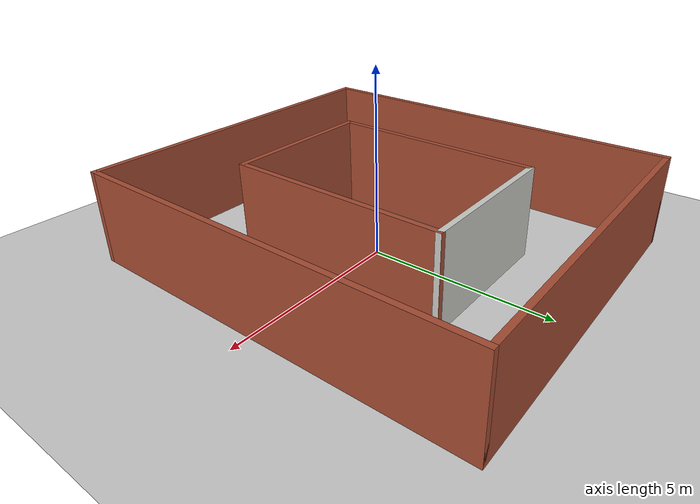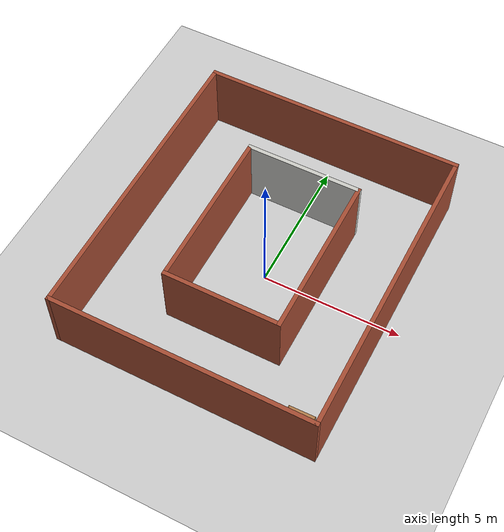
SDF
<sdf version="1.6">
 <world name="default">
  <light name="sun" type="directional">
   <pose>0 0 10 0 -0 0</pose>
   <diffuse>0.8 0.8 0.8 1</diffuse>
   <specular>0.2 0.2 0.2 1</specular>
   <attenuation>
    <range>1000</range>
    <constant>0.9</constant>
    <linear>0.01</linear>
    <quadratic>0.001</quadratic>
   </attenuation>
   <direction>-0.5 0.1 -0.9</direction>
  </light>
  <model name="ground_plane">
   <static>1</static>
   <link name="link">
    <collision name="collision">
     <geometry><plane><normal>0 0 1</normal><size>100 100</size></plane></geometry>
     <surface>
      <contact><collide_bitmask>65535</collide_bitmask></contact>
      <friction><ode><mu>100</mu><mu2>50</mu2></ode></friction>
     </surface>
    </collision>
    <visual name="visual">
     <cast_shadows>0</cast_shadows>
     <geometry><plane><normal>0 0 1</normal><size>100 100</size></plane></geometry>
     <material>
      <script><uri>file://media/materials/scripts/gazebo.material</uri><name>Gazebo/Grey</name></script>
     </material>
    </visual>
   </link>
  </model>
  <gravity>0 0 -9.8</gravity>
  <magnetic_field>6e-06 2.3e-05 -4.2e-05</magnetic_field>
  <atmosphere type="adiabatic"/>
  <physics name="default_physics" default="0" type="ode">
   <max_step_size>0.001</max_step_size>
   <real_time_factor>1</real_time_factor>
   <real_time_update_rate>1000</real_time_update_rate>
  </physics>
  <scene><ambient>0.4 0.4 0.4 1</ambient><background>0.7 0.7 0.7 1</background><shadows>1</shadows></scene>
  <spherical_coordinates>
   <surface_model>EARTH_WGS84</surface_model>
   <latitude_deg>0</latitude_deg>
   <longitude_deg>0</longitude_deg>
   <elevation>0</elevation>
   <heading_deg>0</heading_deg>
  </spherical_coordinates>
  <model name="Pk2_world">
   <pose>-0.259891 0.190617 0 0 -0 0</pose>
   <link name="Wall_0">
    <collision name="Wall_0_Collision">
     <geometry><box><size>11 0.15 2.5</size></box></geometry>
     <pose>0 0 1.25 0 -0 0</pose>
    </collision>
    <visual name="Wall_0_Visual">
     <pose>0 0 1.25 0 -0 0</pose>
     <geometry><box><size>11 0.15 2.5</size></box></geometry>
     <material>
      <script><uri>file://media/materials/scripts/gazebo.material</uri><name>Gazebo/Bricks</name></script>
      <ambient>1 0.333333 1 1</ambient>
     </material>
     <meta><layer>0</layer></meta>
    </visual>
    <pose>-4.675 0 0 0 0 -1.5708</pose>
   </link>
   <link name="Wall_2">
    <collision name="Wall_2_Collision">
     <geometry><box><size>9.5 0.15 2.5</size></box></geometry>
     <pose>0 0 1.25 0 -0 0</pose>
    </collision>
    <visual name="Wall_2_Visual">
     <pose>0 0 1.25 0 -0 0</pose>
     <geometry><box><size>9.5 0.15 2.5</size></box></geometry>
     <material>
      <script><uri>file://media/materials/scripts/gazebo.material</uri><name>Gazebo/Bricks</name></script>
      <ambient>0 0.333333 0 1</ambient>
     </material>
     <meta><layer>0</layer></meta>
    </visual>
    <pose>0 5.425 0 0 -0 0</pose>
   </link>
   <link name="Wall_3">
    <collision name="Wall_3_Collision">
     <geometry><box><size>11 0.15 2.5</size></box></geometry>
     <pose>0 0 1.25 0 -0 0</pose>
    </collision>
    <visual name="Wall_3_Visual">
     <pose>0 0 1.25 0 -0 0</pose>
     <geometry><box><size>11 0.15 2.5</size></box></geometry>
     <material>
      <script><uri>file://media/materials/scripts/gazebo.material</uri><name>Gazebo/Bricks</name></script>
      <ambient>0.996078 0.47451 0.0196078 1</ambient>
     </material>
     <meta><layer>0</layer></meta>
    </visual>
    <pose>4.675 0 0 0 0 -1.5708</pose>
   </link>
   <link name="Wall_4">
    <collision name="Wall_4_Collision">
     <geometry><box><size>9.5 0.15 2.5</size></box></geometry>
     <pose>0 0 1.25 0 -0 0</pose>
    </collision>
    <visual name="Wall_4_Visual">
     <pose>0 0 1.25 0 -0 0</pose>
     <geometry><box><size>9.5 0.15 2.5</size></box></geometry>
     <material>
      <script><uri>file://media/materials/scripts/gazebo.material</uri><name>Gazebo/Bricks</name></script>
      <ambient>0 0 1 1</ambient>
     </material>
     <meta><layer>0</layer></meta>
    </visual>
    <pose>0 -5.425 0 0 -0 3.14159</pose>
   </link>
   <link name="Wall_6">
    <collision name="Wall_6_Collision">
     <geometry><box><size>6 0.15 2.5</size></box></geometry>
     <pose>0 0 1.25 0 -0 0</pose>
    </collision>
    <visual name="Wall_6_Visual">
     <pose>0 0 1.25 0 -0 0</pose>
     <geometry><box><size>6 0.15 2.5</size></box></geometry>
     <material>
      <script><uri>file://media/materials/scripts/gazebo.material</uri><name>Gazebo/Bricks</name></script>
      <ambient>0.996078 0.47451 0.0196078 1</ambient>
     </material>
     <meta><layer>0</layer></meta>
    </visual>
    <pose>-1.92423 -0.008307 0 0 0 -1.5708</pose>
   </link>
   <link name="Wall_7">
    <collision name="Wall_7_Collision">
     <geometry><box><size>4.25 0.15 2.5</size></box></geometry>
     <pose>0 0 1.25 0 -0 0</pose>
    </collision>
    <visual name="Wall_7_Visual">
     <pose>0 0 1.25 0 -0 0</pose>
     <geometry><box><size>4.25 0.15 2.5</size></box></geometry>
     <material>
      <script><uri>file://media/materials/scripts/gazebo.material</uri><name>Gazebo/Bricks</name></script>
      <ambient>1 1 1 1</ambient>
     </material>
     <meta><layer>0</layer></meta>
    </visual>
    <pose>0.125767 -2.93331 0 0 -0 0</pose>
   </link>
   <link name="Wall_8">
    <collision name="Wall_8_Collision">
     <geometry><box><size>6 0.15 2.5</size></box></geometry>
     <pose>0 0 1.25 0 -0 0</pose>
    </collision>
    <visual name="Wall_8_Visual">
     <pose>0 0 1.25 0 -0 0</pose>
     <geometry><box><size>6 0.15 2.5</size></box></geometry>
     <material>
      <script><uri>file://media/materials/scripts/gazebo.material</uri><name>Gazebo/Bricks</name></script>
      <ambient>0.666667 1 0 1</ambient>
     </material>
     <meta><layer>0</layer></meta>
    </visual>
    <pose>2.17577 -0.008307 0 0 -0 1.5708</pose>
   </link>
   <link name="Wall_9">
    <collision name="Wall_9_Collision">
     <geometry><box><size>4.25 0.15 2.5</size></box></geometry>
     <pose>0 0 1.25 0 -0 0</pose>
    </collision>
    <visual name="Wall_9_Visual">
     <pose>0 0 1.25 0 -0 0</pose>
     <geometry><box><size>4.25 0.15 2.5</size></box></geometry>
     <material>
      <script><uri>file://media/materials/scripts/gazebo.material</uri><name>Gazebo/CeilingTiled</name></script>
      <ambient>1 1 0 1</ambient>
     </material>
     <meta><layer>0</layer></meta>
    </visual>
    <pose>0.125767 2.91669 0 0 -0 3.14159</pose>
   </link>
   <static>1</static>
  </model>
  <model name="bookshelf">
   <static>1</static>
   <link name="link">
    <inertial><mass>1</mass></inertial>
    <collision name="back">
     <pose>0 0.005 0.6 0 -0 0</pose>
     <geometry><box><size>0.9 0.01 1.2</size></box></geometry>
    </collision>
    <visual name="visual1">
     <pose>0 0.005 0.6 0 -0 0</pose>
     <geometry><box><size>0.9 0.01 1.2</size></box></geometry>
     <material>
      <script><uri>file://media/materials/scripts/gazebo.material</uri><name>Gazebo/Wood</name></script>
     </material>
    </visual>
    <collision name="left_side">
     <pose>0.45 -0.195 0.6 0 -0 0</pose>
     <geometry><box><size>0.02 0.4 1.2</size></box></geometry>
    </collision>
    <visual name="visual2">
     <pose>0.45 -0.195 0.6 0 -0 0</pose>
     <geometry><box><size>0.02 0.4 1.2</size></box></geometry>
     <material>
      <script><uri>file://media/materials/scripts/gazebo.material</uri><name>Gazebo/Wood</name></script>
     </material>
    </visual>
    <collision name="right_side">
     <pose>-0.45 -0.195 0.6 0 -0 0</pose>
     <geometry><box><size>0.02 0.4 1.2</size></box></geometry>
    </collision>
    <visual name="visual3">
     <pose>-0.45 -0.195 0.6 0 -0 0</pose>
     <geometry><box><size>0.02 0.4 1.2</size></box></geometry>
     <material>
      <script><uri>file://media/materials/scripts/gazebo.material</uri><name>Gazebo/Wood</name></script>
     </material>
    </visual>
    <collision name="bottom">
     <pose>0 -0.195 0.03 0 -0 0</pose>
     <geometry><box><size>0.88 0.4 0.06</size></box></geometry>
    </collision>
    <visual name="visual4">
     <pose>0 -0.195 0.03 0 -0 0</pose>
     <geometry><box><size>0.88 0.4 0.06</size></box></geometry>
     <material>
      <script><uri>file://media/materials/scripts/gazebo.material</uri><name>Gazebo/Wood</name></script>
     </material>
    </visual>
    <collision name="top">
     <pose>0 -0.195 1.19 0 -0 0</pose>
     <geometry><box><size>0.88 0.4 0.02</size></box></geometry>
    </collision>
    <visual name="visual5">
     <pose>0 -0.195 1.19 0 -0 0</pose>
     <geometry><box><size>0.88 0.4 0.02</size></box></geometry>
     <material>
      <script><uri>file://media/materials/scripts/gazebo.material</uri><name>Gazebo/Wood</name></script>
     </material>
    </visual>
    <collision name="low_shelf">
     <pose>0 -0.195 0.43 0 -0 0</pose>
     <geometry><box><size>0.88 0.4 0.02</size></box></geometry>
    </collision>
    <visual name="visual6">
     <pose>0 -0.195 0.43 0 -0 0</pose>
     <geometry><box><size>0.88 0.4 0.02</size></box></geometry>
     <material>
      <script><uri>file://media/materials/scripts/gazebo.material</uri><name>Gazebo/Wood</name></script>
     </material>
    </visual>
    <collision name="high_shelf">
     <pose>0 -0.195 0.8 0 -0 0</pose>
     <geometry><box><size>0.88 0.4 0.02</size></box></geometry>
    </collision>
    <visual name="visual7">
     <pose>0 -0.195 0.8 0 -0 0</pose>
     <geometry><box><size>0.88 0.4 0.02</size></box></geometry>
     <material>
      <script><uri>file://media/materials/scripts/gazebo.material</uri><name>Gazebo/Wood</name></script>
     </material>
    </visual>
   </link>
   <pose>3.61744 -4.87506 0 0 0 -3.12304</pose>
  </model>
 </world>
</sdf>
